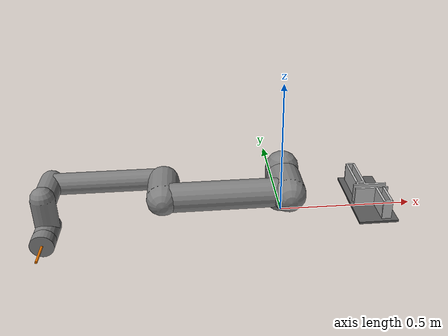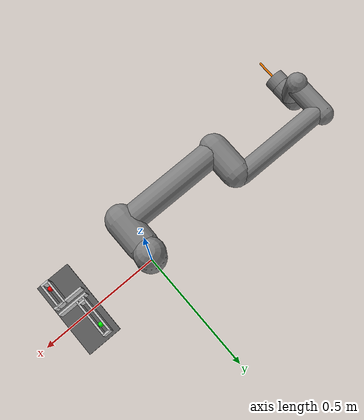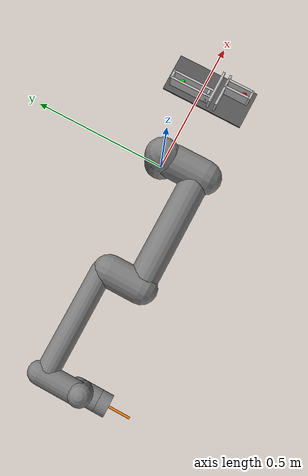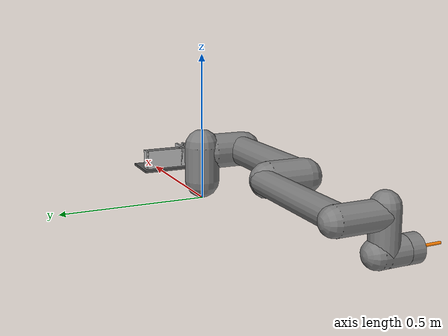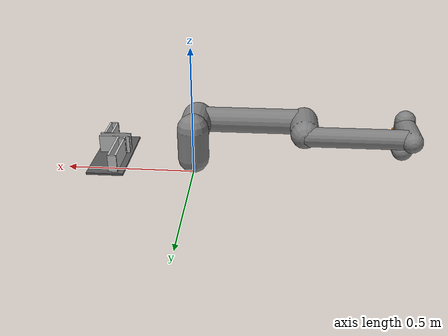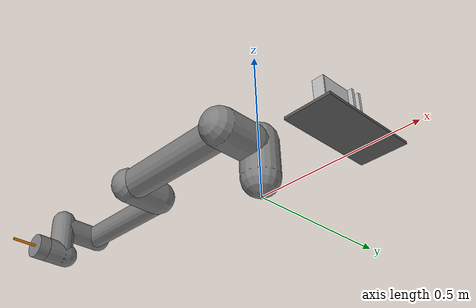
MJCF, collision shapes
<mujoco model="ur5e">
  <compiler angle="radian" meshdir="assets" autolimits="true"/>

  <option integrator="implicitfast" timestep="0.002">
    <flag contact="enable"/>
  </option>

  <size nconmax="200" njmax="500"/>

  <default>
    <default class="ur5e">
      <material specular="0.5" shininess="0.25"/>
      <joint axis="0 1 0" range="-6.28319 6.28319" armature="0.1"/>
      <general gaintype="fixed" biastype="affine" ctrlrange="-6.2831 6.2831"
        gainprm="2000" biasprm="0 -2000 -400" forcerange="-150 150"/>
      <default class="size3">
        <default class="size3_limited">
          <joint range="-3.1415 3.1415"/>
          <general ctrlrange="-3.1415 3.1415"/>
        </default>
      </default>
      <default class="size1">
        <general gainprm="500" biasprm="0 -500 -100" forcerange="-28 28"/>
      </default>
      <default class="visual">
        <geom type="mesh" contype="0" conaffinity="0" group="2"/>
      </default>
      <!-- Arm body geoms: conaffinity=0 — never collide with corridor walls -->
      <default class="collision">
        <geom type="capsule" group="3" contype="1" conaffinity="0"/>
        <default class="eef_collision">
          <geom type="cylinder" contype="1" conaffinity="0"/>
        </default>
      </default>
      <site size="0.001" rgba="0.5 0.5 0.5 0.3" group="4"/>
    </default>
  </default>

  <asset>
    <material class="ur5e" name="black"     rgba="0.033 0.033 0.033 1"/>
    <material class="ur5e" name="jointgray" rgba="0.278 0.278 0.278 1"/>
    <material class="ur5e" name="linkgray"  rgba="0.82 0.82 0.82 1"/>
    <material class="ur5e" name="urblue"    rgba="0.49 0.678 0.8 1"/>
    <mesh file="base_0.obj"/>
    <mesh file="base_1.obj"/>
    <mesh file="shoulder_0.obj"/>
    <mesh file="shoulder_1.obj"/>
    <mesh file="shoulder_2.obj"/>
    <mesh file="upperarm_0.obj"/>
    <mesh file="upperarm_1.obj"/>
    <mesh file="upperarm_2.obj"/>
    <mesh file="upperarm_3.obj"/>
    <mesh file="forearm_0.obj"/>
    <mesh file="forearm_1.obj"/>
    <mesh file="forearm_2.obj"/>
    <mesh file="forearm_3.obj"/>
    <mesh file="wrist1_0.obj"/>
    <mesh file="wrist1_1.obj"/>
    <mesh file="wrist1_2.obj"/>
    <mesh file="wrist2_0.obj"/>
    <mesh file="wrist2_1.obj"/>
    <mesh file="wrist2_2.obj"/>
    <mesh file="wrist3.obj"/>
  </asset>

  <worldbody>
    <light name="spotlight" mode="targetbodycom" target="wrist_2_link" pos="0 -1 2"/>

    <!-- ── UR5e Arm ───────────────────────────────────────────────────────── -->
    <body name="base" quat="0 0 0 -1" childclass="ur5e">
      <inertial mass="4.0" pos="0 0 0" diaginertia="0.00443333156 0.00443333156 0.0072"/>
      <geom mesh="base_0" material="black"     class="visual"/>
      <geom mesh="base_1" material="jointgray" class="visual"/>
      <body name="shoulder_link" pos="0 0 0.163">
        <inertial mass="3.7" pos="0 0 0" diaginertia="0.0102675 0.0102675 0.00666"/>
        <joint name="shoulder_pan_joint" class="size3" axis="0 0 1"/>
        <geom mesh="shoulder_0" material="urblue"    class="visual"/>
        <geom mesh="shoulder_1" material="black"     class="visual"/>
        <geom mesh="shoulder_2" material="jointgray" class="visual"/>
        <geom name="shoulder_col" class="collision" size="0.06 0.06" pos="0 0 -0.04"/>
        <body name="upper_arm_link" pos="0 0.138 0" quat="1 0 1 0">
          <inertial mass="8.393" pos="0 0 0.2125" diaginertia="0.133886 0.133886 0.0151074"/>
          <joint name="shoulder_lift_joint" class="size3"/>
          <geom mesh="upperarm_0" material="linkgray"  class="visual"/>
          <geom mesh="upperarm_1" material="black"     class="visual"/>
          <geom mesh="upperarm_2" material="jointgray" class="visual"/>
          <geom mesh="upperarm_3" material="urblue"    class="visual"/>
          <geom name="upperarm_col0" class="collision" pos="0 -0.04 0" quat="1 1 0 0" size="0.06 0.06"/>
          <geom name="upperarm_col1" class="collision" size="0.05 0.2"  pos="0 0 0.2"/>
          <body name="forearm_link" pos="0 -0.131 0.425">
            <inertial mass="2.275" pos="0 0 0.196" diaginertia="0.0311796 0.0311796 0.004095"/>
            <joint name="elbow_joint" class="size3_limited"/>
            <geom mesh="forearm_0" material="urblue"    class="visual"/>
            <geom mesh="forearm_1" material="linkgray"  class="visual"/>
            <geom mesh="forearm_2" material="black"     class="visual"/>
            <geom mesh="forearm_3" material="jointgray" class="visual"/>
            <geom name="forearm_col0" class="collision" pos="0 0.08 0" quat="1 1 0 0" size="0.055 0.06"/>
            <geom name="forearm_col1" class="collision" size="0.038 0.19" pos="0 0 0.2"/>
            <body name="wrist_1_link" pos="0 0 0.392" quat="1 0 1 0">
              <inertial mass="1.219" pos="0 0.127 0" diaginertia="0.0025599 0.0025599 0.0021942"/>
              <joint name="wrist_1_joint" class="size1"/>
              <geom mesh="wrist1_0" material="black"     class="visual"/>
              <geom mesh="wrist1_1" material="urblue"    class="visual"/>
              <geom mesh="wrist1_2" material="jointgray" class="visual"/>
              <geom name="wrist1_col" class="collision" pos="0 0.05 0" quat="1 1 0 0" size="0.04 0.07"/>
              <body name="wrist_2_link" pos="0 0.127 0">
                <inertial mass="1.219" pos="0 0 0.1" diaginertia="0.0025599 0.0025599 0.0021942"/>
                <joint name="wrist_2_joint" axis="0 0 1" class="size1"/>
                <geom mesh="wrist2_0" material="black"     class="visual"/>
                <geom mesh="wrist2_1" material="urblue"    class="visual"/>
                <geom mesh="wrist2_2" material="jointgray" class="visual"/>
                <geom name="wrist2_col0" class="collision" size="0.04 0.06" pos="0 0 0.04"/>
                <geom name="wrist2_col1" class="collision" pos="0 0.02 0.1" quat="1 1 0 0" size="0.04 0.04"/>
                <body name="wrist_3_link" pos="0 0 0.1">
                  <inertial mass="0.1889" pos="0 0.0771683 0" quat="1 0 0 1"
                    diaginertia="0.000132134 9.90863e-05 9.90863e-05"/>
                  <joint name="wrist_3_joint" class="size1"/>
                  <geom material="linkgray" mesh="wrist3" class="visual"/>
                  <geom name="eef_col" class="eef_collision" pos="0 0.08 0" quat="1 1 0 0" size="0.04 0.02"/>
                  <site name="attachment_site" pos="0 0.1 0" quat="-1 1 0 0"/>

                  <body name="touch_probe" pos="0 0.1 0" quat="-1 1 0 0">
                    <geom name="probe" type="cylinder"
                      size="0.004 0.080"
                      rgba="1 0.5 0 1"
                      contype="1" conaffinity="1"
                      condim="3" friction="0.3 0.1 0.1"
                      mass="0.05"/>
                    <site name="probe_tip" pos="0 0 0.080" size="0.005" rgba="1 1 0 1"/>
                  </body>

                </body>
              </body>
            </body>
          </body>
        </body>
      </body>
    </body>

    <body name="corridor" pos="0.32 -0.03 0.05">

      <!-- Segment 1: top vertical channel, centred at x=-0.030 -->
      <!-- s1_left:  outer left wall,  inner face at x=-0.039 -->
      <!-- s1_right: inner right wall, inner face at x=-0.021 -->
      <geom name="s1_left"  type="box" pos="-0.0430  0.0625 0.0350" size="0.0040 0.0765 0.0350" rgba="0.75 0.75 0.75 1" contype="1" conaffinity="1"/>
      <geom name="s1_right" type="box" pos="-0.0170  0.0625 0.0350" size="0.0040 0.0765 0.0350" rgba="0.75 0.75 0.75 1" contype="1" conaffinity="1"/>
      <geom name="s1_top"   type="box" pos="-0.0300  0.1390 0.0350" size="0.0170 0.0040 0.0350" rgba="0.75 0.75 0.75 1" contype="1" conaffinity="1"/>

      <!-- Segment 2: horizontal cross channel, centred at y=-0.030 -->
      <!-- s2_top: inner top wall, inner face at y=-0.021 -->
      <!-- s2_bot: outer bot wall, inner face at y=-0.039 -->
      <geom name="s2_top"   type="box" pos=" 0.0000 -0.0170 0.0350" size="0.0600 0.0040 0.0350" rgba="0.75 0.75 0.75 1" contype="1" conaffinity="1"/>
      <geom name="s2_bot"   type="box" pos=" 0.0000 -0.0430 0.0350" size="0.0600 0.0040 0.0350" rgba="0.75 0.75 0.75 1" contype="1" conaffinity="1"/>

      <!-- Segment 3: bottom vertical channel, centred at x=+0.030 -->
      <!-- s3_left:  inner left wall, inner face at x=+0.021 -->
      <!-- s3_right: outer right wall, inner face at x=+0.039 -->
      <geom name="s3_left"  type="box" pos=" 0.0170 -0.0880 0.0350" size="0.0040 0.0490 0.0350" rgba="0.75 0.75 0.75 1" contype="1" conaffinity="1"/>
      <geom name="s3_right" type="box" pos=" 0.0430 -0.0880 0.0350" size="0.0040 0.0490 0.0350" rgba="0.75 0.75 0.75 1" contype="1" conaffinity="1"/>
      <geom name="s3_bot"   type="box" pos=" 0.0300 -0.1370 0.0350" size="0.0170 0.0040 0.0350" rgba="0.75 0.75 0.75 1" contype="1" conaffinity="1"/>

      <!-- Corner connectors — fill the turn gaps -->
      <geom name="c1"       type="box" pos="-0.0300 -0.0010 0.0350" size="0.0170 0.0040 0.0350" rgba="0.75 0.75 0.75 1" contype="1" conaffinity="1"/>
      <geom name="c2"       type="box" pos=" 0.0300 -0.0430 0.0350" size="0.0170 0.0040 0.0350" rgba="0.75 0.75 0.75 1" contype="1" conaffinity="1"/>

      <geom name="s_floor"  type="box" pos="0.000 0.000 -0.004" size="0.070 0.155 0.004"
        rgba="0.35 0.35 0.35 1" contype="2" conaffinity="2"/>

      <!-- GREEN = start, centred in seg1 channel. x=-0.030 is equidistant
           from both walls (5mm clearance each side with 4mm probe radius). -->
      <site name="goal"  pos="-0.030  0.100 0.035" size="0.010" rgba="0 1 0 1" group="1"/>
      <!-- RED = goal, centred in seg3 channel. -->
      <site name="start" pos=" 0.030 -0.115 0.035" size="0.010" rgba="1 0 0 1" group="1"/>

    </body>

  </worldbody>

  <actuator>
    <general class="size3"         name="shoulder_pan"  joint="shoulder_pan_joint"/>
    <general class="size3"         name="shoulder_lift" joint="shoulder_lift_joint"/>
    <general class="size3_limited" name="elbow"         joint="elbow_joint"/>
    <general class="size1"         name="wrist_1"       joint="wrist_1_joint"/>
    <general class="size1"         name="wrist_2"       joint="wrist_2_joint"/>
    <general class="size1"         name="wrist_3"       joint="wrist_3_joint"/>
  </actuator>

  <!-- Touch sensor: maps directly to piezo on real arm.
       Read with: data.sensor('probe_force').data[0]  (Newtons) -->
  <sensor>
    <touch name="probe_force" site="probe_tip"/>
  </sensor>

  <!-- Home keyframe: probe tip centred in seg1 at green site.
       Read from viewer after manual positioning.
       These match HOME_QPOS in q_learning.py — keep in sync. -->
  <keyframe>
    <key name="home"
      qpos="0.754 -1.45 -2.8 -1.76 -4.59 -2.07"
      ctrl="0.754 -1.45 -2.8 -1.76 -4.59 -2.07"/>
  </keyframe>

</mujoco>
